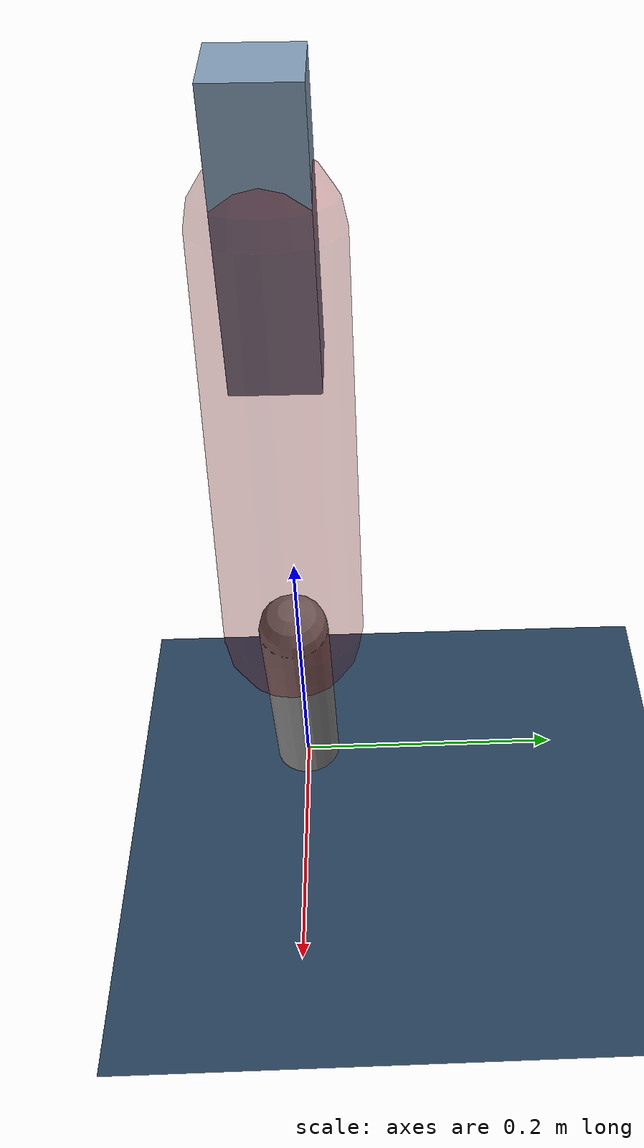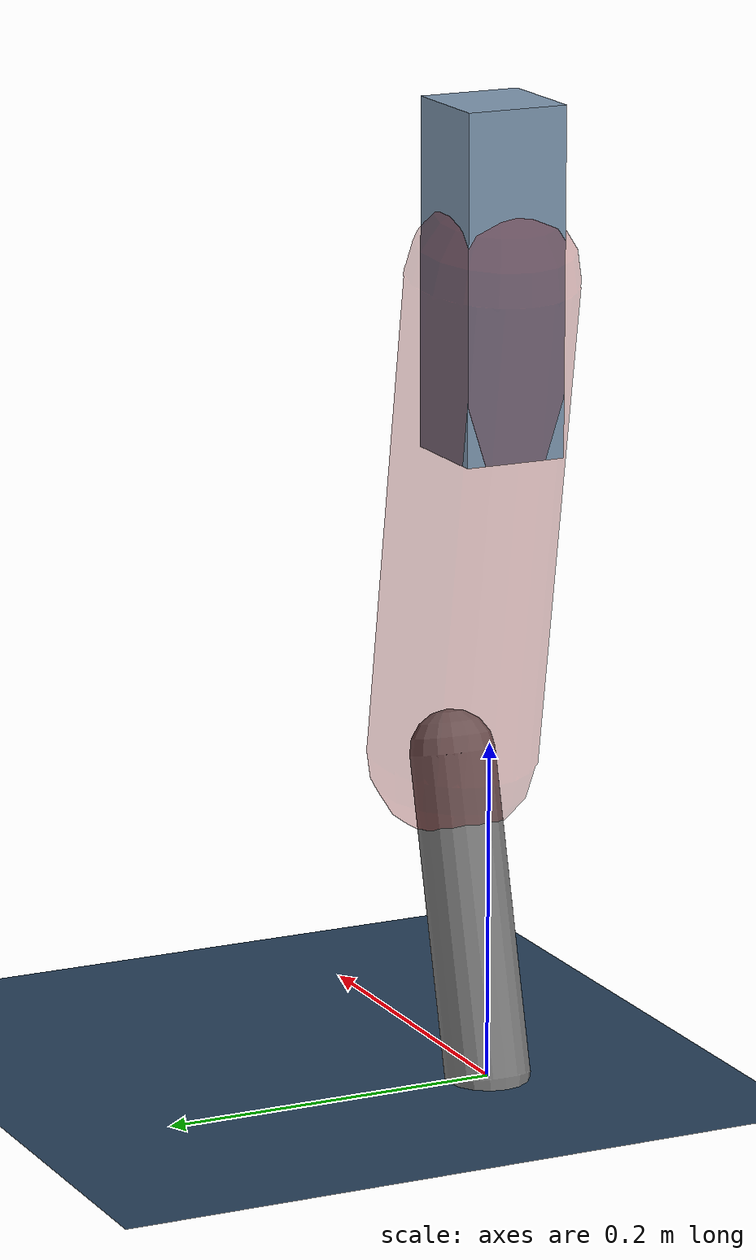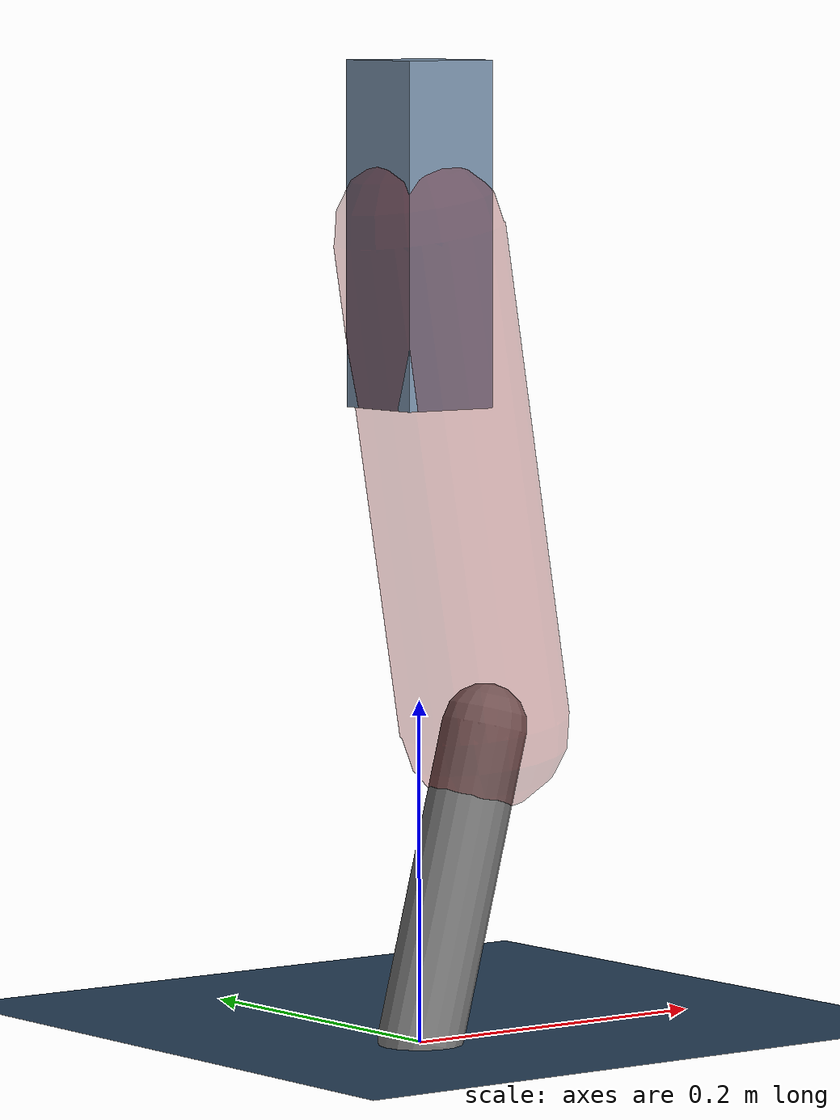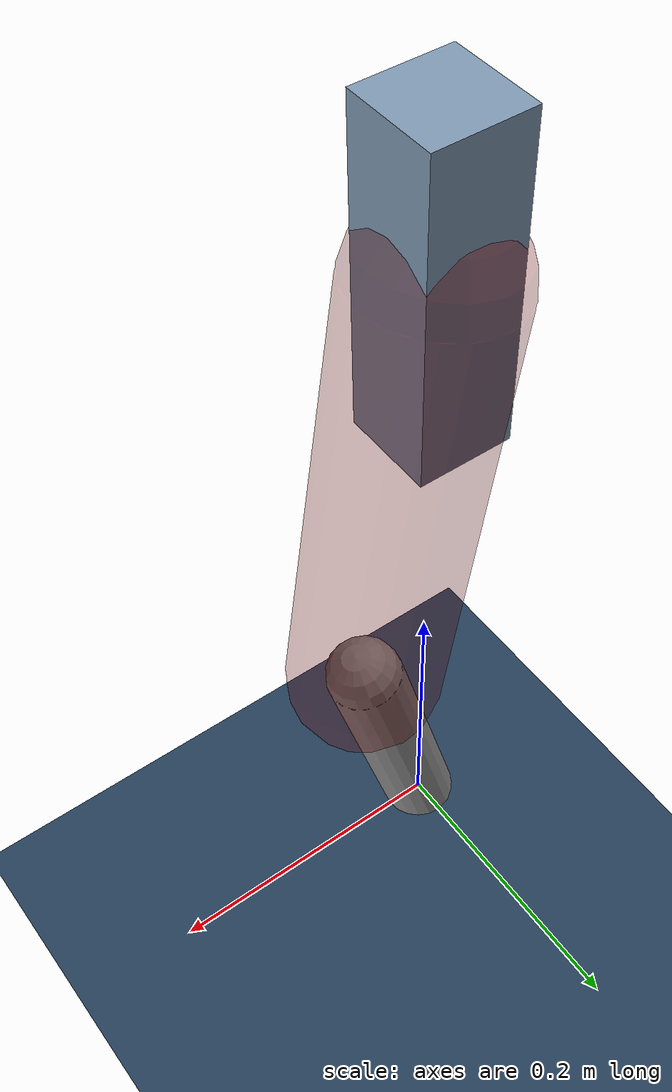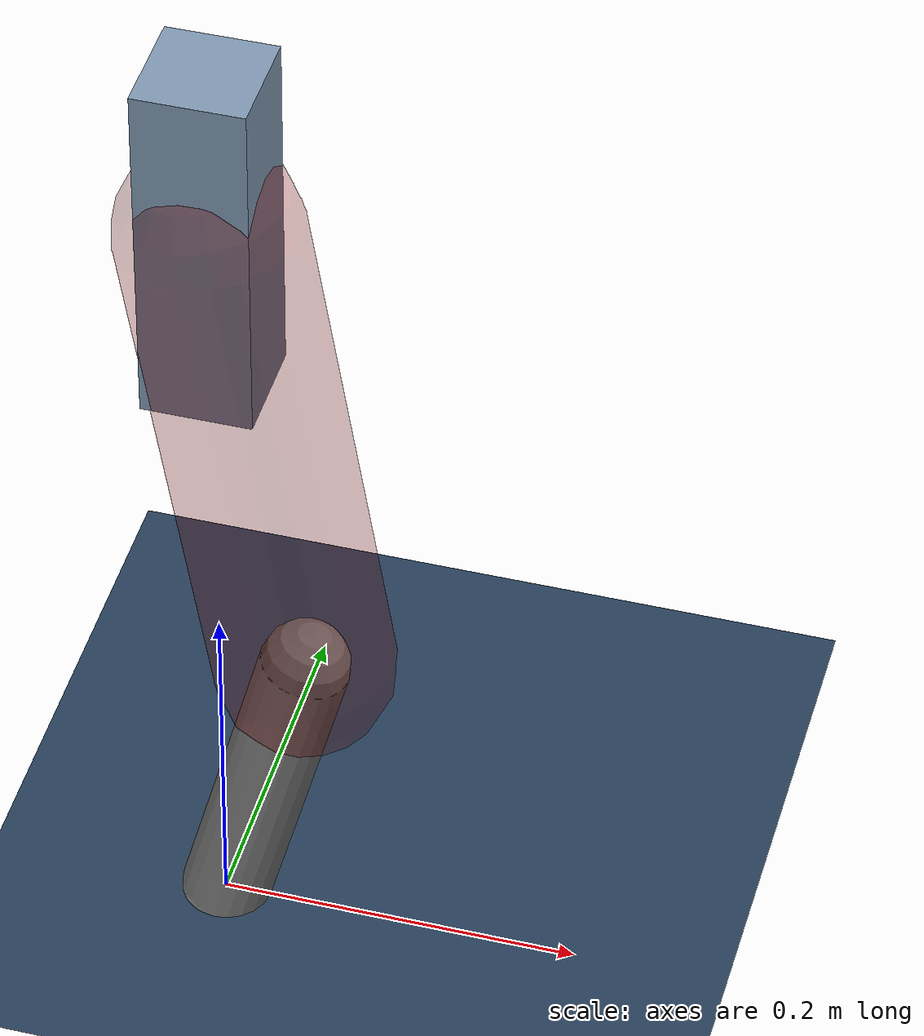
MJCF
<mujoco model="Hopper2D">
	<compiler inertiafromgeom="true" angle="radian" />
	<option timestep="0.001" integrator="implicit" cone="elliptic" solver="Newton" tolerance="1e-10" />

	<default>
		<geom contype="1" conaffinity="1" condim="3" friction="2 0.005 0.0001" solref="0.005 1" />
		<joint limited="true" damping="0.1" />
	</default>

	<asset>
		<texture name="skybox" type="skybox" builtin="gradient" rgb1=".4 .6 .8" rgb2="0 0 0" width="800" height="800" />
		<texture name="grid" type="2d" builtin="checker" rgb1=".1 .2 .3" rgb2=".2 .3 .4" width="300" height="300" mark="edge" markrgb=".2 .3 .4" />
		<material name="ground" texture="grid" texrepeat="1 1" texuniform="true" reflectance="0.1" />
		<material name="leg" rgba="0.5 0.6 0.7 1" />
	</asset>

	<worldbody>

		<geom name="floor" type="plane" size="5 5 0.25" material="ground" />

		<light directional="false" diffuse="0.8 0.8 0.8" specular="0.3 0.3 0.3" pos="0 0 2" dir="0 0 -1" />
		<light mode="targetbodycom" target="base" directional="false" diffuse="0.8 0.8 0.8" specular="0.3 0.3 0.3" pos="0 0 2" dir="0 0 -1" />

		<camera name="fixed" pos="0 -2 1" xyaxes="1 0 0 0 0 1" />
		<camera name="tracking" mode="trackcom" pos="0 -3 1" />

		<body name="root" pos="0 0 0.4706649733385009">
			<joint name="slide_x" type="slide" axis="1 0 0" range="-100 100" />
			<joint name="slide_z" type="slide" axis="0 0 1" range="0 10" />

			<body name="base" pos="0 0 0">
				<geom name="torso" type="box" size="0.03 0.03 0.1" mass="3.223" material="leg" />

				<body name="link1" pos="0 0 0" euler="0 1.4070891263086536 0">
					<joint type="hinge" axis="0 -1 0" pos="0 0 0" name="hinge1" limited="true" range="-3.14 3.14" stiffness="0" damping="0.1" />
					<geom name="thigh" type="capsule" fromto="0 0 0 0.2919470842084526 0 0" size="0.05" rgba="0.5 0 0 0.3" mass="0.967057127362822" />

					<body name="link2" pos="0.2919470842084526 0 0" euler="0 0.4185835827474248 0">
						<joint type="hinge" axis="0 -1 0" pos="0 0 0" name="hinge2" limited="true" range="-3.14 3.14" stiffness="0" damping="0.1" />
						<geom name="shank" type="capsule" fromto="0 0 0 0.18871788913004825 0 0" size="0.025" mass="0.3913461002170434" />

					</body>
				</body>
			</body>
		</body>
	</worldbody>

	<actuator>
		<motor name="torque1" joint="hinge1" ctrlrange="-127.16243759217436 127.16243759217436" ctrllimited="true" gear="1" />
		<motor name="torque2" joint="hinge2" ctrlrange="-79.52002553861682 79.52002553861682" ctrllimited="true" gear="1" />
	</actuator>
</mujoco>
